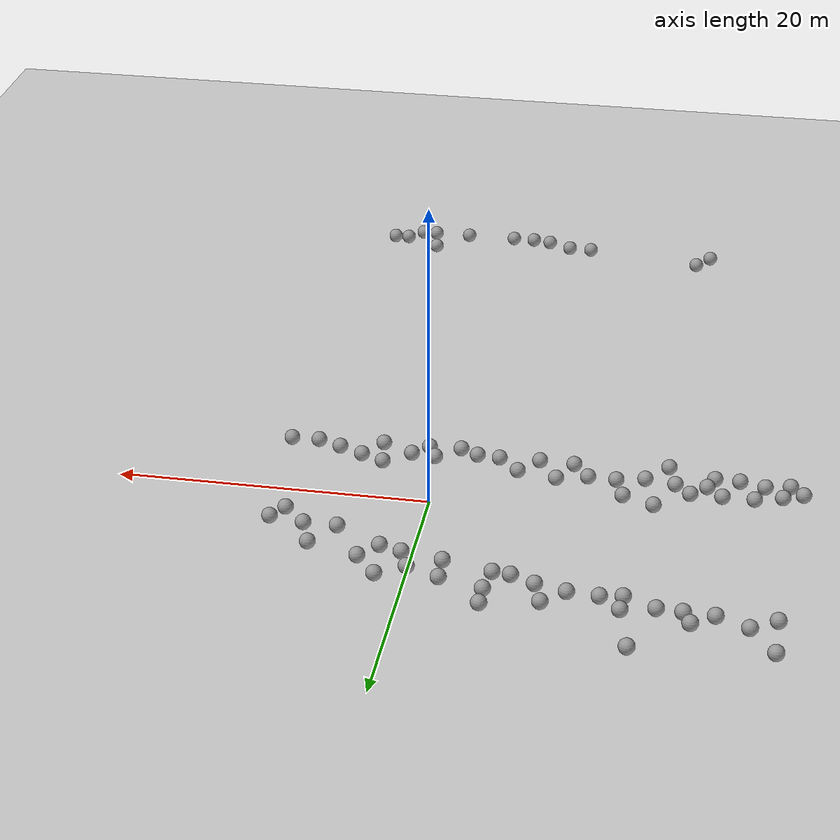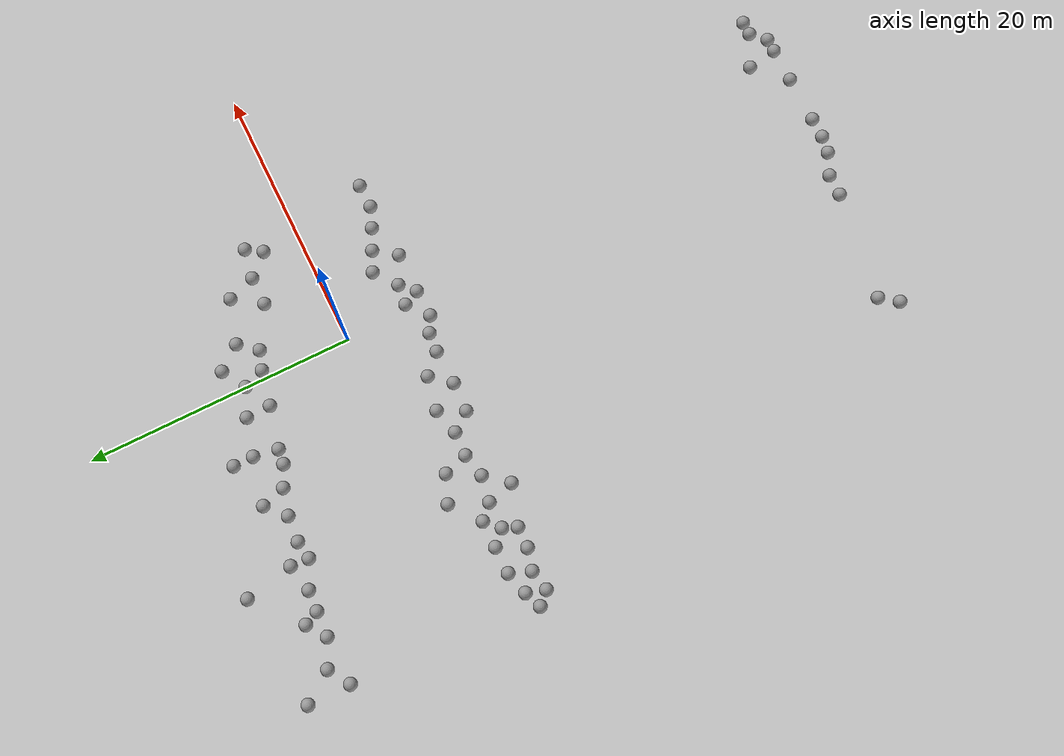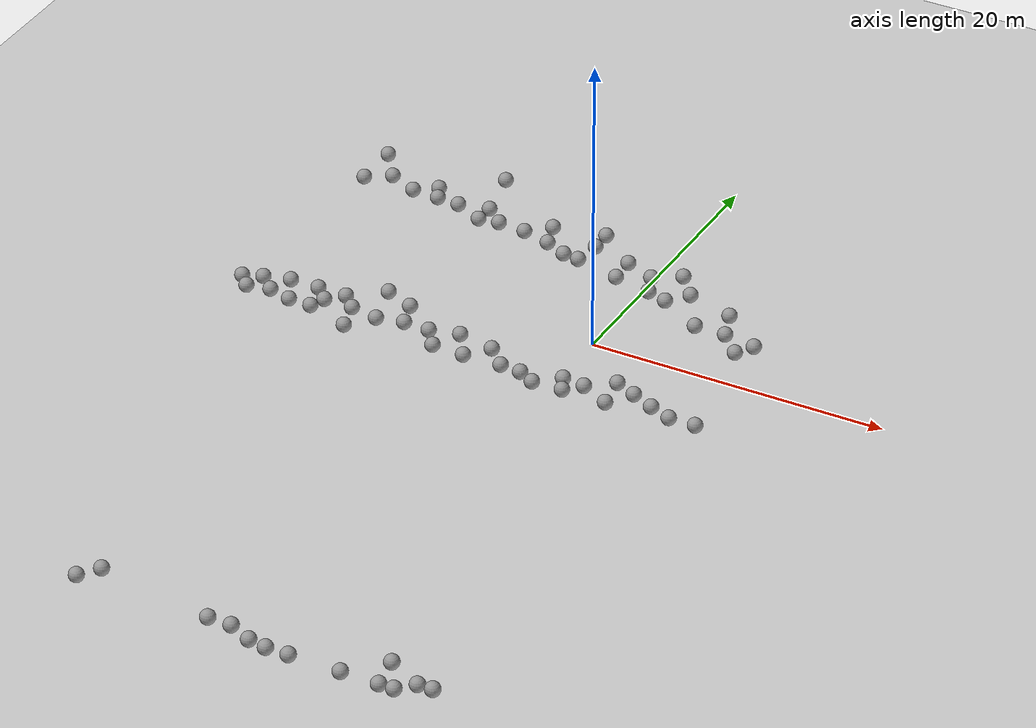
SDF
<sdf version="1.6">
 <world name="default">
  <model name="ground_plane">
   <static>1</static>
   <link name="link">
    <collision name="collision">
     <geometry><plane><normal>0 0 1</normal><size>100 100</size></plane></geometry>
     <surface><friction><ode><mu>100</mu><mu2>50</mu2></ode></friction></surface>
    </collision>
    <visual name="visual">
     <cast_shadows>0</cast_shadows>
     <geometry><plane><normal>0 0 1</normal><size>100 100</size></plane></geometry>
     <material>
      <script><uri>file://media/materials/scripts/gazebo.material</uri><name>Gazebo/Grey</name></script>
     </material>
    </visual>
   </link>
  </model>
  <model name="unit_sphere_0">
   <pose>5.15486 -4.38811 0.5 0 -0 0</pose>
   <link name="link">
    <inertial>
     <mass>1</mass>
     <inertia><ixx>0.1</ixx><ixy>0</ixy><ixz>0</ixz><iyy>0.1</iyy><iyz>0</iyz><izz>0.1</izz></inertia>
    </inertial>
    <collision name="collision"><geometry><sphere><radius>0.5</radius></sphere></geometry></collision>
    <visual name="visual">
     <geometry><sphere><radius>0.5</radius></sphere></geometry>
     <material>
      <script><name>Gazebo/Grey</name><uri>file://media/materials/scripts/gazebo.material</uri></script>
     </material>
    </visual>
   </link>
  </model>
  <model name="unit_sphere_0_clone">
   <pose>6.71384 -5.09296 0.5 0 -0 0</pose>
   <link name="link">
    <inertial>
     <mass>1</mass>
     <inertia><ixx>0.1</ixx><ixy>0</ixy><ixz>0</ixz><iyy>0.1</iyy><iyz>0</iyz><izz>0.1</izz></inertia>
    </inertial>
    <collision name="collision"><geometry><sphere><radius>0.5</radius></sphere></geometry></collision>
    <visual name="visual">
     <geometry><sphere><radius>0.5</radius></sphere></geometry>
     <material>
      <script><name>Gazebo/Grey</name><uri>file://media/materials/scripts/gazebo.material</uri></script>
     </material>
    </visual>
   </link>
  </model>
  <model name="unit_sphere_0_clone_0">
   <pose>8.23139 -5.68918 0.5 0 -0 0</pose>
   <link name="link">
    <inertial>
     <mass>1</mass>
     <inertia><ixx>0.1</ixx><ixy>0</ixy><ixz>0</ixz><iyy>0.1</iyy><iyz>0</iyz><izz>0.1</izz></inertia>
    </inertial>
    <collision name="collision"><geometry><sphere><radius>0.5</radius></sphere></geometry></collision>
    <visual name="visual">
     <geometry><sphere><radius>0.5</radius></sphere></geometry>
     <material>
      <script><name>Gazebo/Grey</name><uri>file://media/materials/scripts/gazebo.material</uri></script>
     </material>
    </visual>
   </link>
  </model>
  <model name="unit_sphere_0_clone_1">
   <pose>10.0198 -5.65385 0.5 0 -0 0</pose>
   <link name="link">
    <inertial>
     <mass>1</mass>
     <inertia><ixx>0.1</ixx><ixy>0</ixy><ixz>0</ixz><iyy>0.1</iyy><iyz>0</iyz><izz>0.1</izz></inertia>
    </inertial>
    <collision name="collision"><geometry><sphere><radius>0.5</radius></sphere></geometry></collision>
    <visual name="visual">
     <geometry><sphere><radius>0.5</radius></sphere></geometry>
     <material>
      <script><name>Gazebo/Grey</name><uri>file://media/materials/scripts/gazebo.material</uri></script>
     </material>
    </visual>
   </link>
  </model>
  <model name="unit_sphere_0_clone_7">
   <pose>7.08774 4.29856 0.5 0 -0 0</pose>
   <link name="link">
    <inertial>
     <mass>1</mass>
     <inertia><ixx>0.1</ixx><ixy>0</ixy><ixz>0</ixz><iyy>0.1</iyy><iyz>0</iyz><izz>0.1</izz></inertia>
    </inertial>
    <collision name="collision"><geometry><sphere><radius>0.5</radius></sphere></geometry></collision>
    <visual name="visual">
     <geometry><sphere><radius>0.5</radius></sphere></geometry>
     <material>
      <script><name>Gazebo/Grey</name><uri>file://media/materials/scripts/gazebo.material</uri></script>
     </material>
    </visual>
   </link>
  </model>
  <model name="unit_sphere_0_clone_8">
   <pose>8.53893 2.74635 0.5 0 -0 0</pose>
   <link name="link">
    <inertial>
     <mass>1</mass>
     <inertia><ixx>0.1</ixx><ixy>0</ixy><ixz>0</ixz><iyy>0.1</iyy><iyz>0</iyz><izz>0.1</izz></inertia>
    </inertial>
    <collision name="collision"><geometry><sphere><radius>0.5</radius></sphere></geometry></collision>
    <visual name="visual">
     <geometry><sphere><radius>0.5</radius></sphere></geometry>
     <material>
      <script><name>Gazebo/Grey</name><uri>file://media/materials/scripts/gazebo.material</uri></script>
     </material>
    </visual>
   </link>
  </model>
  <model name="unit_sphere_0_clone_9">
   <pose>9.28861 3.90002 0.5 0 -0 0</pose>
   <link name="link">
    <inertial>
     <mass>1</mass>
     <inertia><ixx>0.1</ixx><ixy>0</ixy><ixz>0</ixz><iyy>0.1</iyy><iyz>0</iyz><izz>0.1</izz></inertia>
    </inertial>
    <collision name="collision"><geometry><sphere><radius>0.5</radius></sphere></geometry></collision>
    <visual name="visual">
     <geometry><sphere><radius>0.5</radius></sphere></geometry>
     <material>
      <script><name>Gazebo/Grey</name><uri>file://media/materials/scripts/gazebo.material</uri></script>
     </material>
    </visual>
   </link>
  </model>
  <model name="unit_sphere_0_clone_46">
   <pose>-17.0385 11.0775 0.5 0 -0 0</pose>
   <link name="link">
    <inertial>
     <mass>1</mass>
     <inertia><ixx>0.1</ixx><ixy>0</ixy><ixz>0</ixz><iyy>0.1</iyy><iyz>0</iyz><izz>0.1</izz></inertia>
    </inertial>
    <collision name="collision"><geometry><sphere><radius>0.5</radius></sphere></geometry></collision>
    <visual name="visual">
     <geometry><sphere><radius>0.5</radius></sphere></geometry>
     <material>
      <script><name>Gazebo/Grey</name><uri>file://media/materials/scripts/gazebo.material</uri></script>
     </material>
    </visual>
   </link>
  </model>
  <model name="unit_sphere_0_clone_47">
   <pose>-8.29138 10.353 0.5 0 -0 0</pose>
   <link name="link">
    <inertial>
     <mass>1</mass>
     <inertia><ixx>0.1</ixx><ixy>0</ixy><ixz>0</ixz><iyy>0.1</iyy><iyz>0</iyz><izz>0.1</izz></inertia>
    </inertial>
    <collision name="collision"><geometry><sphere><radius>0.5</radius></sphere></geometry></collision>
    <visual name="visual">
     <geometry><sphere><radius>0.5</radius></sphere></geometry>
     <material>
      <script><name>Gazebo/Grey</name><uri>file://media/materials/scripts/gazebo.material</uri></script>
     </material>
    </visual>
   </link>
  </model>
  <model name="unit_sphere_0_clone_48">
   <pose>-2.06402 8.83003 0.5 0 -0 0</pose>
   <link name="link">
    <inertial>
     <mass>1</mass>
     <inertia><ixx>0.1</ixx><ixy>0</ixy><ixz>0</ixz><iyy>0.1</iyy><iyz>0</iyz><izz>0.1</izz></inertia>
    </inertial>
    <collision name="collision"><geometry><sphere><radius>0.5</radius></sphere></geometry></collision>
    <visual name="visual">
     <geometry><sphere><radius>0.5</radius></sphere></geometry>
     <material>
      <script><name>Gazebo/Grey</name><uri>file://media/materials/scripts/gazebo.material</uri></script>
     </material>
    </visual>
   </link>
  </model>
  <model name="unit_sphere_0_clone_49">
   <pose>3.12178 7.33825 0.5 0 -0 0</pose>
   <link name="link">
    <inertial>
     <mass>1</mass>
     <inertia><ixx>0.1</ixx><ixy>0</ixy><ixz>0</ixz><iyy>0.1</iyy><iyz>0</iyz><izz>0.1</izz></inertia>
    </inertial>
    <collision name="collision"><geometry><sphere><radius>0.5</radius></sphere></geometry></collision>
    <visual name="visual">
     <geometry><sphere><radius>0.5</radius></sphere></geometry>
     <material>
      <script><name>Gazebo/Grey</name><uri>file://media/materials/scripts/gazebo.material</uri></script>
     </material>
    </visual>
   </link>
  </model>
  <model name="unit_sphere_0_clone_66">
   <pose>-17.4237 -5.03519 0.5 0 -0 0</pose>
   <link name="link">
    <inertial>
     <mass>1</mass>
     <inertia><ixx>0.1</ixx><ixy>0</ixy><ixz>0</ixz><iyy>0.1</iyy><iyz>0</iyz><izz>0.1</izz></inertia>
    </inertial>
    <collision name="collision"><geometry><sphere><radius>0.5</radius></sphere></geometry></collision>
    <visual name="visual">
     <geometry><sphere><radius>0.5</radius></sphere></geometry>
     <material>
      <script><name>Gazebo/Grey</name><uri>file://media/materials/scripts/gazebo.material</uri></script>
     </material>
    </visual>
   </link>
  </model>
  <model name="unit_sphere_0_clone_67">
   <pose>-8.45682 -5.37674 0.5 0 -0 0</pose>
   <link name="link">
    <inertial>
     <mass>1</mass>
     <inertia><ixx>0.1</ixx><ixy>0</ixy><ixz>0</ixz><iyy>0.1</iyy><iyz>0</iyz><izz>0.1</izz></inertia>
    </inertial>
    <collision name="collision"><geometry><sphere><radius>0.5</radius></sphere></geometry></collision>
    <visual name="visual">
     <geometry><sphere><radius>0.5</radius></sphere></geometry>
     <material>
      <script><name>Gazebo/Grey</name><uri>file://media/materials/scripts/gazebo.material</uri></script>
     </material>
    </visual>
   </link>
  </model>
  <model name="unit_sphere_0_clone_68">
   <pose>-3.64738 -5.35577 0.5 0 -0 0</pose>
   <link name="link">
    <inertial>
     <mass>1</mass>
     <inertia><ixx>0.1</ixx><ixy>0</ixy><ixz>0</ixz><iyy>0.1</iyy><iyz>0</iyz><izz>0.1</izz></inertia>
    </inertial>
    <collision name="collision"><geometry><sphere><radius>0.5</radius></sphere></geometry></collision>
    <visual name="visual">
     <geometry><sphere><radius>0.5</radius></sphere></geometry>
     <material>
      <script><name>Gazebo/Grey</name><uri>file://media/materials/scripts/gazebo.material</uri></script>
     </material>
    </visual>
   </link>
  </model>
  <model name="unit_sphere_0_clone_69">
   <pose>0.457119 -4.82896 0.5 0 -0 0</pose>
   <link name="link">
    <inertial>
     <mass>1</mass>
     <inertia><ixx>0.1</ixx><ixy>0</ixy><ixz>0</ixz><iyy>0.1</iyy><iyz>0</iyz><izz>0.1</izz></inertia>
    </inertial>
    <collision name="collision"><geometry><sphere><radius>0.5</radius></sphere></geometry></collision>
    <visual name="visual">
     <geometry><sphere><radius>0.5</radius></sphere></geometry>
     <material>
      <script><name>Gazebo/Grey</name><uri>file://media/materials/scripts/gazebo.material</uri></script>
     </material>
    </visual>
   </link>
  </model>
  <model name="unit_sphere_0_clone_74">
   <pose>-4.39592 -37.0393 0.5 0 -0 0</pose>
   <link name="link">
    <inertial>
     <mass>1</mass>
     <inertia><ixx>0.1</ixx><ixy>0</ixy><ixz>0</ixz><iyy>0.1</iyy><iyz>0</iyz><izz>0.1</izz></inertia>
    </inertial>
    <collision name="collision"><geometry><sphere><radius>0.5</radius></sphere></geometry></collision>
    <visual name="visual">
     <geometry><sphere><radius>0.5</radius></sphere></geometry>
     <material>
      <script><name>Gazebo/Grey</name><uri>file://media/materials/scripts/gazebo.material</uri></script>
     </material>
    </visual>
   </link>
  </model>
  <model name="unit_sphere_0_clone_75">
   <pose>5.6303 -35.7873 0.5 0 -0 0</pose>
   <link name="link">
    <inertial>
     <mass>1</mass>
     <inertia><ixx>0.1</ixx><ixy>0</ixy><ixz>0</ixz><iyy>0.1</iyy><iyz>0</iyz><izz>0.1</izz></inertia>
    </inertial>
    <collision name="collision"><geometry><sphere><radius>0.5</radius></sphere></geometry></collision>
    <visual name="visual">
     <geometry><sphere><radius>0.5</radius></sphere></geometry>
     <material>
      <script><name>Gazebo/Grey</name><uri>file://media/materials/scripts/gazebo.material</uri></script>
     </material>
    </visual>
   </link>
  </model>
  <model name="unit_sphere_0_clone_76">
   <pose>-14.0409 -35.7155 0.5 0 -0 0</pose>
   <link name="link">
    <inertial>
     <mass>1</mass>
     <inertia><ixx>0.1</ixx><ixy>0</ixy><ixz>0</ixz><iyy>0.1</iyy><iyz>0</iyz><izz>0.1</izz></inertia>
    </inertial>
    <collision name="collision"><geometry><sphere><radius>0.5</radius></sphere></geometry></collision>
    <visual name="visual">
     <geometry><sphere><radius>0.5</radius></sphere></geometry>
     <material>
      <script><name>Gazebo/Grey</name><uri>file://media/materials/scripts/gazebo.material</uri></script>
     </material>
    </visual>
   </link>
  </model>
  <model name="unit_sphere_0_clone_92">
   <pose>-21.74 -3.48856 0.5 0 -0 0</pose>
   <link name="link">
    <inertial>
     <mass>1</mass>
     <inertia><ixx>0.1</ixx><ixy>0</ixy><ixz>0</ixz><iyy>0.1</iyy><iyz>0</iyz><izz>0.1</izz></inertia>
    </inertial>
    <collision name="collision"><geometry><sphere><radius>0.5</radius></sphere></geometry></collision>
    <visual name="visual">
     <geometry><sphere><radius>0.5</radius></sphere></geometry>
     <material>
      <script><name>Gazebo/Grey</name><uri>file://media/materials/scripts/gazebo.material</uri></script>
     </material>
    </visual>
   </link>
  </model>
  <model name="unit_sphere_0_clone_93">
   <pose>-11.8546 -2.13799 0.5 0 -0 0</pose>
   <link name="link">
    <inertial>
     <mass>1</mass>
     <inertia><ixx>0.1</ixx><ixy>0</ixy><ixz>0</ixz><iyy>0.1</iyy><iyz>0</iyz><izz>0.1</izz></inertia>
    </inertial>
    <collision name="collision"><geometry><sphere><radius>0.5</radius></sphere></geometry></collision>
    <visual name="visual">
     <geometry><sphere><radius>0.5</radius></sphere></geometry>
     <material>
      <script><name>Gazebo/Grey</name><uri>file://media/materials/scripts/gazebo.material</uri></script>
     </material>
    </visual>
   </link>
  </model>
  <model name="unit_sphere_0_clone_94">
   <pose>-16 -3 0.5 0 -0 0</pose>
   <link name="link">
    <inertial>
     <mass>1</mass>
     <inertia><ixx>0.1</ixx><ixy>0</ixy><ixz>0</ixz><iyy>0.1</iyy><iyz>0</iyz><izz>0.1</izz></inertia>
    </inertial>
    <collision name="collision"><geometry><sphere><radius>0.5</radius></sphere></geometry></collision>
    <visual name="visual">
     <geometry><sphere><radius>0.5</radius></sphere></geometry>
     <material>
      <script><name>Gazebo/Grey</name><uri>file://media/materials/scripts/gazebo.material</uri></script>
     </material>
    </visual>
   </link>
  </model>
  <model name="unit_sphere_0_clone_108">
   <pose>-21.996 13.1864 0.5 0 -0 0</pose>
   <link name="link">
    <inertial>
     <mass>1</mass>
     <inertia><ixx>0.1</ixx><ixy>0</ixy><ixz>0</ixz><iyy>0.1</iyy><iyz>0</iyz><izz>0.1</izz></inertia>
    </inertial>
    <collision name="collision"><geometry><sphere><radius>0.5</radius></sphere></geometry></collision>
    <visual name="visual">
     <geometry><sphere><radius>0.5</radius></sphere></geometry>
     <material>
      <script><name>Gazebo/Grey</name><uri>file://media/materials/scripts/gazebo.material</uri></script>
     </material>
    </visual>
   </link>
  </model>
  <model name="unit_sphere_0_clone_109">
   <pose>-13.6837 13.9819 0.5 0 -0 0</pose>
   <link name="link">
    <inertial>
     <mass>1</mass>
     <inertia><ixx>0.1</ixx><ixy>0</ixy><ixz>0</ixz><iyy>0.1</iyy><iyz>0</iyz><izz>0.1</izz></inertia>
    </inertial>
    <collision name="collision"><geometry><sphere><radius>0.5</radius></sphere></geometry></collision>
    <visual name="visual">
     <geometry><sphere><radius>0.5</radius></sphere></geometry>
     <material>
      <script><name>Gazebo/Grey</name><uri>file://media/materials/scripts/gazebo.material</uri></script>
     </material>
    </visual>
   </link>
  </model>
  <model name="unit_sphere_0_clone_110">
   <pose>-11.6248 9.21536 0.5 0 -0 0</pose>
   <link name="link">
    <inertial>
     <mass>1</mass>
     <inertia><ixx>0.1</ixx><ixy>0</ixy><ixz>0</ixz><iyy>0.1</iyy><iyz>0</iyz><izz>0.1</izz></inertia>
    </inertial>
    <collision name="collision"><geometry><sphere><radius>0.5</radius></sphere></geometry></collision>
    <visual name="visual">
     <geometry><sphere><radius>0.5</radius></sphere></geometry>
     <material>
      <script><name>Gazebo/Grey</name><uri>file://media/materials/scripts/gazebo.material</uri></script>
     </material>
    </visual>
   </link>
  </model>
  <model name="unit_sphere_0_clone_111">
   <pose>-12.934 10.3721 0.5 0 -0 0</pose>
   <link name="link">
    <inertial>
     <mass>1</mass>
     <inertia><ixx>0.1</ixx><ixy>0</ixy><ixz>0</ixz><iyy>0.1</iyy><iyz>0</iyz><izz>0.1</izz></inertia>
    </inertial>
    <collision name="collision"><geometry><sphere><radius>0.5</radius></sphere></geometry></collision>
    <visual name="visual">
     <geometry><sphere><radius>0.5</radius></sphere></geometry>
     <material>
      <script><name>Gazebo/Grey</name><uri>file://media/materials/scripts/gazebo.material</uri></script>
     </material>
    </visual>
   </link>
  </model>
  <model name="unit_sphere_0_clone_112">
   <pose>-4.81926 11.0803 0.5 0 -0 0</pose>
   <link name="link">
    <inertial>
     <mass>1</mass>
     <inertia><ixx>0.1</ixx><ixy>0</ixy><ixz>0</ixz><iyy>0.1</iyy><iyz>0</iyz><izz>0.1</izz></inertia>
    </inertial>
    <collision name="collision"><geometry><sphere><radius>0.5</radius></sphere></geometry></collision>
    <visual name="visual">
     <geometry><sphere><radius>0.5</radius></sphere></geometry>
     <material>
      <script><name>Gazebo/Grey</name><uri>file://media/materials/scripts/gazebo.material</uri></script>
     </material>
    </visual>
   </link>
  </model>
  <model name="unit_sphere_0_clone_113">
   <pose>-5.10187 7.7334 0.5 0.014407 0.122545 0.000898</pose>
   <link name="link">
    <inertial>
     <mass>1</mass>
     <inertia><ixx>0.1</ixx><ixy>0</ixy><ixz>0</ixz><iyy>0.1</iyy><iyz>0</iyz><izz>0.1</izz></inertia>
    </inertial>
    <collision name="collision"><geometry><sphere><radius>0.5</radius></sphere></geometry></collision>
    <visual name="visual">
     <geometry><sphere><radius>0.5</radius></sphere></geometry>
     <material>
      <script><name>Gazebo/Grey</name><uri>file://media/materials/scripts/gazebo.material</uri></script>
     </material>
    </visual>
   </link>
  </model>
  <model name="unit_sphere_0_clone_114">
   <pose>1.75236 9.06116 0.5 0 -0 0</pose>
   <link name="link">
    <inertial>
     <mass>1</mass>
     <inertia><ixx>0.1</ixx><ixy>0</ixy><ixz>0</ixz><iyy>0.1</iyy><iyz>0</iyz><izz>0.1</izz></inertia>
    </inertial>
    <collision name="collision"><geometry><sphere><radius>0.5</radius></sphere></geometry></collision>
    <visual name="visual">
     <geometry><sphere><radius>0.5</radius></sphere></geometry>
     <material>
      <script><name>Gazebo/Grey</name><uri>file://media/materials/scripts/gazebo.material</uri></script>
     </material>
    </visual>
   </link>
  </model>
  <model name="unit_sphere_1_clone_17">
   <pose>9 -37 0.5 0 -0 0</pose>
   <link name="link">
    <inertial>
     <mass>1</mass>
     <inertia><ixx>0.1</ixx><ixy>0</ixy><ixz>0</ixz><iyy>0.1</iyy><iyz>0</iyz><izz>0.1</izz></inertia>
    </inertial>
    <collision name="collision"><geometry><sphere><radius>0.5</radius></sphere></geometry></collision>
    <visual name="visual">
     <geometry><sphere><radius>0.5</radius></sphere></geometry>
     <material>
      <script><name>Gazebo/Grey</name><uri>file://media/materials/scripts/gazebo.material</uri></script>
     </material>
    </visual>
   </link>
  </model>
  <model name="unit_sphere_1_clone_18">
   <pose>8 -37 0.5 0 -0 0</pose>
   <link name="link">
    <inertial>
     <mass>1</mass>
     <inertia><ixx>0.1</ixx><ixy>0</ixy><ixz>0</ixz><iyy>0.1</iyy><iyz>0</iyz><izz>0.1</izz></inertia>
    </inertial>
    <collision name="collision"><geometry><sphere><radius>0.5</radius></sphere></geometry></collision>
    <visual name="visual">
     <geometry><sphere><radius>0.5</radius></sphere></geometry>
     <material>
      <script><name>Gazebo/Grey</name><uri>file://media/materials/scripts/gazebo.material</uri></script>
     </material>
    </visual>
   </link>
  </model>
  <model name="unit_sphere_1_clone_20">
   <pose>7 -38 0.5 0 -0 0</pose>
   <link name="link">
    <inertial>
     <mass>1</mass>
     <inertia><ixx>0.1</ixx><ixy>0</ixy><ixz>0</ixz><iyy>0.1</iyy><iyz>0</iyz><izz>0.1</izz></inertia>
    </inertial>
    <collision name="collision"><geometry><sphere><radius>0.5</radius></sphere></geometry></collision>
    <visual name="visual">
     <geometry><sphere><radius>0.5</radius></sphere></geometry>
     <material>
      <script><name>Gazebo/Grey</name><uri>file://media/materials/scripts/gazebo.material</uri></script>
     </material>
    </visual>
   </link>
  </model>
  <model name="unit_sphere_1_clone_21">
   <pose>6 -38 0.5 0 -0 0</pose>
   <link name="link">
    <inertial>
     <mass>1</mass>
     <inertia><ixx>0.1</ixx><ixy>0</ixy><ixz>0</ixz><iyy>0.1</iyy><iyz>0</iyz><izz>0.1</izz></inertia>
    </inertial>
    <collision name="collision"><geometry><sphere><radius>0.5</radius></sphere></geometry></collision>
    <visual name="visual">
     <geometry><sphere><radius>0.5</radius></sphere></geometry>
     <material>
      <script><name>Gazebo/Grey</name><uri>file://media/materials/scripts/gazebo.material</uri></script>
     </material>
    </visual>
   </link>
  </model>
  <model name="unit_sphere_1_clone_25">
   <pose>3.46403 -38 0.5 0 -0 0</pose>
   <link name="link">
    <inertial>
     <mass>1</mass>
     <inertia><ixx>0.1</ixx><ixy>0</ixy><ixz>0</ixz><iyy>0.1</iyy><iyz>0</iyz><izz>0.1</izz></inertia>
    </inertial>
    <collision name="collision"><geometry><sphere><radius>0.5</radius></sphere></geometry></collision>
    <visual name="visual">
     <geometry><sphere><radius>0.5</radius></sphere></geometry>
     <material>
      <script><name>Gazebo/Grey</name><uri>file://media/materials/scripts/gazebo.material</uri></script>
     </material>
    </visual>
   </link>
  </model>
  <model name="unit_sphere_1_clone_26">
   <pose>0 -38 0.5 0 -0 0</pose>
   <link name="link">
    <inertial>
     <mass>1</mass>
     <inertia><ixx>0.1</ixx><ixy>0</ixy><ixz>0</ixz><iyy>0.1</iyy><iyz>0</iyz><izz>0.1</izz></inertia>
    </inertial>
    <collision name="collision"><geometry><sphere><radius>0.5</radius></sphere></geometry></collision>
    <visual name="visual">
     <geometry><sphere><radius>0.5</radius></sphere></geometry>
     <material>
      <script><name>Gazebo/Grey</name><uri>file://media/materials/scripts/gazebo.material</uri></script>
     </material>
    </visual>
   </link>
  </model>
  <model name="unit_sphere_1_clone_27">
   <pose>-2.78454 -37.7752 0.5 0 -0 0</pose>
   <link name="link">
    <inertial>
     <mass>1</mass>
     <inertia><ixx>0.1</ixx><ixy>0</ixy><ixz>0</ixz><iyy>0.1</iyy><iyz>0</iyz><izz>0.1</izz></inertia>
    </inertial>
    <collision name="collision"><geometry><sphere><radius>0.5</radius></sphere></geometry></collision>
    <visual name="visual">
     <geometry><sphere><radius>0.5</radius></sphere></geometry>
     <material>
      <script><name>Gazebo/Grey</name><uri>file://media/materials/scripts/gazebo.material</uri></script>
     </material>
    </visual>
   </link>
  </model>
  <model name="unit_sphere_1_clone_28">
   <pose>-1.52495 -38 0.5 0 -0 0</pose>
   <link name="link">
    <inertial>
     <mass>1</mass>
     <inertia><ixx>0.1</ixx><ixy>0</ixy><ixz>0</ixz><iyy>0.1</iyy><iyz>0</iyz><izz>0.1</izz></inertia>
    </inertial>
    <collision name="collision"><geometry><sphere><radius>0.5</radius></sphere></geometry></collision>
    <visual name="visual">
     <geometry><sphere><radius>0.5</radius></sphere></geometry>
     <material>
      <script><name>Gazebo/Grey</name><uri>file://media/materials/scripts/gazebo.material</uri></script>
     </material>
    </visual>
   </link>
  </model>
  <model name="unit_sphere_1_clone_29">
   <pose>-6 -37 0.5 0 -0 0</pose>
   <link name="link">
    <inertial>
     <mass>1</mass>
     <inertia><ixx>0.1</ixx><ixy>0</ixy><ixz>0</ixz><iyy>0.1</iyy><iyz>0</iyz><izz>0.1</izz></inertia>
    </inertial>
    <collision name="collision"><geometry><sphere><radius>0.5</radius></sphere></geometry></collision>
    <visual name="visual">
     <geometry><sphere><radius>0.5</radius></sphere></geometry>
     <material>
      <script><name>Gazebo/Grey</name><uri>file://media/materials/scripts/gazebo.material</uri></script>
     </material>
    </visual>
   </link>
  </model>
  <model name="unit_sphere_1_clone_36">
   <pose>-15 -37 0.5 0 -0 0</pose>
   <link name="link">
    <inertial>
     <mass>1</mass>
     <inertia><ixx>0.1</ixx><ixy>0</ixy><ixz>0</ixz><iyy>0.1</iyy><iyz>0</iyz><izz>0.1</izz></inertia>
    </inertial>
    <collision name="collision"><geometry><sphere><radius>0.5</radius></sphere></geometry></collision>
    <visual name="visual">
     <geometry><sphere><radius>0.5</radius></sphere></geometry>
     <material>
      <script><name>Gazebo/Grey</name><uri>file://media/materials/scripts/gazebo.material</uri></script>
     </material>
    </visual>
   </link>
  </model>
  <model name="unit_sphere_1_clone_108">
   <pose>-22.1653 -4.89296 0.5 0 -0 0</pose>
   <link name="link">
    <inertial>
     <mass>1</mass>
     <inertia><ixx>0.1</ixx><ixy>0</ixy><ixz>0</ixz><iyy>0.1</iyy><iyz>0</iyz><izz>0.1</izz></inertia>
    </inertial>
    <collision name="collision"><geometry><sphere><radius>0.5</radius></sphere></geometry></collision>
    <visual name="visual">
     <geometry><sphere><radius>0.5</radius></sphere></geometry>
     <material>
      <script><name>Gazebo/Grey</name><uri>file://media/materials/scripts/gazebo.material</uri></script>
     </material>
    </visual>
   </link>
  </model>
  <model name="unit_sphere_1_clone_109">
   <pose>-23 -4 0.5 0 -0 0</pose>
   <link name="link">
    <inertial>
     <mass>1</mass>
     <inertia><ixx>0.1</ixx><ixy>0</ixy><ixz>0</ixz><iyy>0.1</iyy><iyz>0</iyz><izz>0.1</izz></inertia>
    </inertial>
    <collision name="collision"><geometry><sphere><radius>0.5</radius></sphere></geometry></collision>
    <visual name="visual">
     <geometry><sphere><radius>0.5</radius></sphere></geometry>
     <material>
      <script><name>Gazebo/Grey</name><uri>file://media/materials/scripts/gazebo.material</uri></script>
     </material>
    </visual>
   </link>
  </model>
  <model name="unit_sphere_1_clone_110">
   <pose>-20.5952 -4.57551 0.5 0 -0 0</pose>
   <link name="link">
    <inertial>
     <mass>1</mass>
     <inertia><ixx>0.1</ixx><ixy>0</ixy><ixz>0</ixz><iyy>0.1</iyy><iyz>0</iyz><izz>0.1</izz></inertia>
    </inertial>
    <collision name="collision"><geometry><sphere><radius>0.5</radius></sphere></geometry></collision>
    <visual name="visual">
     <geometry><sphere><radius>0.5</radius></sphere></geometry>
     <material>
      <script><name>Gazebo/Grey</name><uri>file://media/materials/scripts/gazebo.material</uri></script>
     </material>
    </visual>
   </link>
  </model>
  <model name="unit_sphere_1_clone_111">
   <pose>-20 -3 0.5 0 -0 0</pose>
   <link name="link">
    <inertial>
     <mass>1</mass>
     <inertia><ixx>0.1</ixx><ixy>0</ixy><ixz>0</ixz><iyy>0.1</iyy><iyz>0</iyz><izz>0.1</izz></inertia>
    </inertial>
    <collision name="collision"><geometry><sphere><radius>0.5</radius></sphere></geometry></collision>
    <visual name="visual">
     <geometry><sphere><radius>0.5</radius></sphere></geometry>
     <material>
      <script><name>Gazebo/Grey</name><uri>file://media/materials/scripts/gazebo.material</uri></script>
     </material>
    </visual>
   </link>
  </model>
  <model name="unit_sphere_1_clone_112">
   <pose>-19 -5 0.5 0 -0 0</pose>
   <link name="link">
    <inertial>
     <mass>1</mass>
     <inertia><ixx>0.1</ixx><ixy>0</ixy><ixz>0</ixz><iyy>0.1</iyy><iyz>0</iyz><izz>0.1</izz></inertia>
    </inertial>
    <collision name="collision"><geometry><sphere><radius>0.5</radius></sphere></geometry></collision>
    <visual name="visual">
     <geometry><sphere><radius>0.5</radius></sphere></geometry>
     <material>
      <script><name>Gazebo/Grey</name><uri>file://media/materials/scripts/gazebo.material</uri></script>
     </material>
    </visual>
   </link>
  </model>
  <model name="unit_sphere_1_clone_113">
   <pose>-18 -3 0.5 0 -0 0</pose>
   <link name="link">
    <inertial>
     <mass>1</mass>
     <inertia><ixx>0.1</ixx><ixy>0</ixy><ixz>0</ixz><iyy>0.1</iyy><iyz>0</iyz><izz>0.1</izz></inertia>
    </inertial>
    <collision name="collision"><geometry><sphere><radius>0.5</radius></sphere></geometry></collision>
    <visual name="visual">
     <geometry><sphere><radius>0.5</radius></sphere></geometry>
     <material>
      <script><name>Gazebo/Grey</name><uri>file://media/materials/scripts/gazebo.material</uri></script>
     </material>
    </visual>
   </link>
  </model>
  <model name="unit_sphere_1_clone_114">
   <pose>-17 -4 0.5 0 -0 0</pose>
   <link name="link">
    <inertial>
     <mass>1</mass>
     <inertia><ixx>0.1</ixx><ixy>0</ixy><ixz>0</ixz><iyy>0.1</iyy><iyz>0</iyz><izz>0.1</izz></inertia>
    </inertial>
    <collision name="collision"><geometry><sphere><radius>0.5</radius></sphere></geometry></collision>
    <visual name="visual">
     <geometry><sphere><radius>0.5</radius></sphere></geometry>
     <material>
      <script><name>Gazebo/Grey</name><uri>file://media/materials/scripts/gazebo.material</uri></script>
     </material>
    </visual>
   </link>
  </model>
  <model name="unit_sphere_1_clone_115">
   <pose>-15 -4 0.5 0 -0 0</pose>
   <link name="link">
    <inertial>
     <mass>1</mass>
     <inertia><ixx>0.1</ixx><ixy>0</ixy><ixz>0</ixz><iyy>0.1</iyy><iyz>0</iyz><izz>0.1</izz></inertia>
    </inertial>
    <collision name="collision"><geometry><sphere><radius>0.5</radius></sphere></geometry></collision>
    <visual name="visual">
     <geometry><sphere><radius>0.5</radius></sphere></geometry>
     <material>
      <script><name>Gazebo/Grey</name><uri>file://media/materials/scripts/gazebo.material</uri></script>
     </material>
    </visual>
   </link>
  </model>
  <model name="unit_sphere_1_clone_116">
   <pose>-13.0794 -4.33675 0.5 0 -0 0</pose>
   <link name="link">
    <inertial>
     <mass>1</mass>
     <inertia><ixx>0.1</ixx><ixy>0</ixy><ixz>0</ixz><iyy>0.1</iyy><iyz>0</iyz><izz>0.1</izz></inertia>
    </inertial>
    <collision name="collision"><geometry><sphere><radius>0.5</radius></sphere></geometry></collision>
    <visual name="visual">
     <geometry><sphere><radius>0.5</radius></sphere></geometry>
     <material>
      <script><name>Gazebo/Grey</name><uri>file://media/materials/scripts/gazebo.material</uri></script>
     </material>
    </visual>
   </link>
  </model>
  <model name="unit_sphere_1_clone_117">
   <pose>-11.2812 -3.93493 0.5 0 -0 0</pose>
   <link name="link">
    <inertial>
     <mass>1</mass>
     <inertia><ixx>0.1</ixx><ixy>0</ixy><ixz>0</ixz><iyy>0.1</iyy><iyz>0</iyz><izz>0.1</izz></inertia>
    </inertial>
    <collision name="collision"><geometry><sphere><radius>0.5</radius></sphere></geometry></collision>
    <visual name="visual">
     <geometry><sphere><radius>0.5</radius></sphere></geometry>
     <material>
      <script><name>Gazebo/Grey</name><uri>file://media/materials/scripts/gazebo.material</uri></script>
     </material>
    </visual>
   </link>
  </model>
  <model name="unit_sphere_1_clone_118">
   <pose>-13.8535 -1.32096 0.5 0 -0 0</pose>
   <link name="link">
    <inertial>
     <mass>1</mass>
     <inertia><ixx>0.1</ixx><ixy>0</ixy><ixz>0</ixz><iyy>0.1</iyy><iyz>0</iyz><izz>0.1</izz></inertia>
    </inertial>
    <collision name="collision"><geometry><sphere><radius>0.5</radius></sphere></geometry></collision>
    <visual name="visual">
     <geometry><sphere><radius>0.5</radius></sphere></geometry>
     <material>
      <script><name>Gazebo/Grey</name><uri>file://media/materials/scripts/gazebo.material</uri></script>
     </material>
    </visual>
   </link>
  </model>
  <model name="unit_sphere_1_clone_119">
   <pose>-14.4611 -6 0.5 0 -0 0</pose>
   <link name="link">
    <inertial>
     <mass>1</mass>
     <inertia><ixx>0.1</ixx><ixy>0</ixy><ixz>0</ixz><iyy>0.1</iyy><iyz>0</iyz><izz>0.1</izz></inertia>
    </inertial>
    <collision name="collision"><geometry><sphere><radius>0.5</radius></sphere></geometry></collision>
    <visual name="visual">
     <geometry><sphere><radius>0.5</radius></sphere></geometry>
     <material>
      <script><name>Gazebo/Grey</name><uri>file://media/materials/scripts/gazebo.material</uri></script>
     </material>
    </visual>
   </link>
  </model>
  <model name="unit_sphere_1_clone_120">
   <pose>-9.48684 -4 0.5 0 -0 0</pose>
   <link name="link">
    <inertial>
     <mass>1</mass>
     <inertia><ixx>0.1</ixx><ixy>0</ixy><ixz>0</ixz><iyy>0.1</iyy><iyz>0</iyz><izz>0.1</izz></inertia>
    </inertial>
    <collision name="collision"><geometry><sphere><radius>0.5</radius></sphere></geometry></collision>
    <visual name="visual">
     <geometry><sphere><radius>0.5</radius></sphere></geometry>
     <material>
      <script><name>Gazebo/Grey</name><uri>file://media/materials/scripts/gazebo.material</uri></script>
     </material>
    </visual>
   </link>
  </model>
  <model name="unit_sphere_1_clone_121">
   <pose>-7.5129 -3.49486 0.5 0 -0 0</pose>
   <link name="link">
    <inertial>
     <mass>1</mass>
     <inertia><ixx>0.1</ixx><ixy>0</ixy><ixz>0</ixz><iyy>0.1</iyy><iyz>0</iyz><izz>0.1</izz></inertia>
    </inertial>
    <collision name="collision"><geometry><sphere><radius>0.5</radius></sphere></geometry></collision>
    <visual name="visual">
     <geometry><sphere><radius>0.5</radius></sphere></geometry>
     <material>
      <script><name>Gazebo/Grey</name><uri>file://media/materials/scripts/gazebo.material</uri></script>
     </material>
    </visual>
   </link>
  </model>
  <model name="unit_sphere_1_clone_122">
   <pose>-5 -4 0.5 0 -0 0</pose>
   <link name="link">
    <inertial>
     <mass>1</mass>
     <inertia><ixx>0.1</ixx><ixy>0</ixy><ixz>0</ixz><iyy>0.1</iyy><iyz>0</iyz><izz>0.1</izz></inertia>
    </inertial>
    <collision name="collision"><geometry><sphere><radius>0.5</radius></sphere></geometry></collision>
    <visual name="visual">
     <geometry><sphere><radius>0.5</radius></sphere></geometry>
     <material>
      <script><name>Gazebo/Grey</name><uri>file://media/materials/scripts/gazebo.material</uri></script>
     </material>
    </visual>
   </link>
  </model>
  <model name="unit_sphere_1_clone_123">
   <pose>3.67311 -3.72889 0.5 0 -0 0</pose>
   <link name="link">
    <inertial>
     <mass>1</mass>
     <inertia><ixx>0.1</ixx><ixy>0</ixy><ixz>0</ixz><iyy>0.1</iyy><iyz>0</iyz><izz>0.1</izz></inertia>
    </inertial>
    <collision name="collision"><geometry><sphere><radius>0.5</radius></sphere></geometry></collision>
    <visual name="visual">
     <geometry><sphere><radius>0.5</radius></sphere></geometry>
     <material>
      <script><name>Gazebo/Grey</name><uri>file://media/materials/scripts/gazebo.material</uri></script>
     </material>
    </visual>
   </link>
  </model>
  <model name="unit_sphere_1_clone_124">
   <pose>4 -6 0.5 0 -0 0</pose>
   <link name="link">
    <inertial>
     <mass>1</mass>
     <inertia><ixx>0.1</ixx><ixy>0</ixy><ixz>0</ixz><iyy>0.1</iyy><iyz>0</iyz><izz>0.1</izz></inertia>
    </inertial>
    <collision name="collision"><geometry><sphere><radius>0.5</radius></sphere></geometry></collision>
    <visual name="visual">
     <geometry><sphere><radius>0.5</radius></sphere></geometry>
     <material>
      <script><name>Gazebo/Grey</name><uri>file://media/materials/scripts/gazebo.material</uri></script>
     </material>
    </visual>
   </link>
  </model>
  <model name="unit_sphere_1_clone_125">
   <pose>2 -5 0.5 0 -0 0</pose>
   <link name="link">
    <inertial>
     <mass>1</mass>
     <inertia><ixx>0.1</ixx><ixy>0</ixy><ixz>0</ixz><iyy>0.1</iyy><iyz>0</iyz><izz>0.1</izz></inertia>
    </inertial>
    <collision name="collision"><geometry><sphere><radius>0.5</radius></sphere></geometry></collision>
    <visual name="visual">
     <geometry><sphere><radius>0.5</radius></sphere></geometry>
     <material>
      <script><name>Gazebo/Grey</name><uri>file://media/materials/scripts/gazebo.material</uri></script>
     </material>
    </visual>
   </link>
  </model>
  <model name="unit_sphere_1_clone_126">
   <pose>1 -6 0.5 0 -0 0</pose>
   <link name="link">
    <inertial>
     <mass>1</mass>
     <inertia><ixx>0.1</ixx><ixy>0</ixy><ixz>0</ixz><iyy>0.1</iyy><iyz>0</iyz><izz>0.1</izz></inertia>
    </inertial>
    <collision name="collision"><geometry><sphere><radius>0.5</radius></sphere></geometry></collision>
    <visual name="visual">
     <geometry><sphere><radius>0.5</radius></sphere></geometry>
     <material>
      <script><name>Gazebo/Grey</name><uri>file://media/materials/scripts/gazebo.material</uri></script>
     </material>
    </visual>
   </link>
  </model>
  <model name="unit_sphere_1_clone_127">
   <pose>-2.20363 -5.47718 0.5 0 -0 0</pose>
   <link name="link">
    <inertial>
     <mass>1</mass>
     <inertia><ixx>0.1</ixx><ixy>0</ixy><ixz>0</ixz><iyy>0.1</iyy><iyz>0</iyz><izz>0.1</izz></inertia>
    </inertial>
    <collision name="collision"><geometry><sphere><radius>0.5</radius></sphere></geometry></collision>
    <visual name="visual">
     <geometry><sphere><radius>0.5</radius></sphere></geometry>
     <material>
      <script><name>Gazebo/Grey</name><uri>file://media/materials/scripts/gazebo.material</uri></script>
     </material>
    </visual>
   </link>
  </model>
  <model name="unit_sphere_1_clone_128">
   <pose>-1.04966 -6.09086 0.5 0 -0 0</pose>
   <link name="link">
    <inertial>
     <mass>1</mass>
     <inertia><ixx>0.1</ixx><ixy>0</ixy><ixz>0</ixz><iyy>0.1</iyy><iyz>0</iyz><izz>0.1</izz></inertia>
    </inertial>
    <collision name="collision"><geometry><sphere><radius>0.5</radius></sphere></geometry></collision>
    <visual name="visual">
     <geometry><sphere><radius>0.5</radius></sphere></geometry>
     <material>
      <script><name>Gazebo/Grey</name><uri>file://media/materials/scripts/gazebo.material</uri></script>
     </material>
    </visual>
   </link>
  </model>
  <model name="unit_sphere_1_clone_129">
   <pose>-6.24302 -5.45743 0.5 0 -0 0</pose>
   <link name="link">
    <inertial>
     <mass>1</mass>
     <inertia><ixx>0.1</ixx><ixy>0</ixy><ixz>0</ixz><iyy>0.1</iyy><iyz>0</iyz><izz>0.1</izz></inertia>
    </inertial>
    <collision name="collision"><geometry><sphere><radius>0.5</radius></sphere></geometry></collision>
    <visual name="visual">
     <geometry><sphere><radius>0.5</radius></sphere></geometry>
     <material>
      <script><name>Gazebo/Grey</name><uri>file://media/materials/scripts/gazebo.material</uri></script>
     </material>
    </visual>
   </link>
  </model>
  <model name="unit_sphere_1_clone_130">
   <pose>-4.80652 9.57054 0.5 0 -0 0</pose>
   <link name="link">
    <inertial>
     <mass>1</mass>
     <inertia><ixx>0.1</ixx><ixy>0</ixy><ixz>0</ixz><iyy>0.1</iyy><iyz>0</iyz><izz>0.1</izz></inertia>
    </inertial>
    <collision name="collision"><geometry><sphere><radius>0.5</radius></sphere></geometry></collision>
    <visual name="visual">
     <geometry><sphere><radius>0.5</radius></sphere></geometry>
     <material>
      <script><name>Gazebo/Grey</name><uri>file://media/materials/scripts/gazebo.material</uri></script>
     </material>
    </visual>
   </link>
  </model>
  <model name="unit_sphere_1_clone_131">
   <pose>-6.21735 7.86384 0.5 -0.014446 -0.122066 0.000891</pose>
   <link name="link">
    <inertial>
     <mass>1</mass>
     <inertia><ixx>0.1</ixx><ixy>0</ixy><ixz>0</ixz><iyy>0.1</iyy><iyz>0</iyz><izz>0.1</izz></inertia>
    </inertial>
    <collision name="collision"><geometry><sphere><radius>0.5</radius></sphere></geometry></collision>
    <visual name="visual">
     <geometry><sphere><radius>0.5</radius></sphere></geometry>
     <material>
      <script><name>Gazebo/Grey</name><uri>file://media/materials/scripts/gazebo.material</uri></script>
     </material>
    </visual>
   </link>
  </model>
  <model name="unit_sphere_1_clone_132">
   <pose>-7.74511 8.57428 0.5 0 -0 0</pose>
   <link name="link">
    <inertial>
     <mass>1</mass>
     <inertia><ixx>0.1</ixx><ixy>0</ixy><ixz>0</ixz><iyy>0.1</iyy><iyz>0</iyz><izz>0.1</izz></inertia>
    </inertial>
    <collision name="collision"><geometry><sphere><radius>0.5</radius></sphere></geometry></collision>
    <visual name="visual">
     <geometry><sphere><radius>0.5</radius></sphere></geometry>
     <material>
      <script><name>Gazebo/Grey</name><uri>file://media/materials/scripts/gazebo.material</uri></script>
     </material>
    </visual>
   </link>
  </model>
  <model name="unit_sphere_1_clone_133">
   <pose>-9.69025 9.073 0.5 0 -0 0</pose>
   <link name="link">
    <inertial>
     <mass>1</mass>
     <inertia><ixx>0.1</ixx><ixy>0</ixy><ixz>0</ixz><iyy>0.1</iyy><iyz>0</iyz><izz>0.1</izz></inertia>
    </inertial>
    <collision name="collision"><geometry><sphere><radius>0.5</radius></sphere></geometry></collision>
    <visual name="visual">
     <geometry><sphere><radius>0.5</radius></sphere></geometry>
     <material>
      <script><name>Gazebo/Grey</name><uri>file://media/materials/scripts/gazebo.material</uri></script>
     </material>
    </visual>
   </link>
  </model>
  <model name="unit_sphere_1_clone_134">
   <pose>-13 9 0.5 0 -0 0</pose>
   <link name="link">
    <inertial>
     <mass>1</mass>
     <inertia><ixx>0.1</ixx><ixy>0</ixy><ixz>0</ixz><iyy>0.1</iyy><iyz>0</iyz><izz>0.1</izz></inertia>
    </inertial>
    <collision name="collision"><geometry><sphere><radius>0.5</radius></sphere></geometry></collision>
    <visual name="visual">
     <geometry><sphere><radius>0.5</radius></sphere></geometry>
     <material>
      <script><name>Gazebo/Grey</name><uri>file://media/materials/scripts/gazebo.material</uri></script>
     </material>
    </visual>
   </link>
  </model>
  <model name="unit_sphere_1_clone_135">
   <pose>-14.9877 9.91942 0.5 0 -0 0</pose>
   <link name="link">
    <inertial>
     <mass>1</mass>
     <inertia><ixx>0.1</ixx><ixy>0</ixy><ixz>0</ixz><iyy>0.1</iyy><iyz>0</iyz><izz>0.1</izz></inertia>
    </inertial>
    <collision name="collision"><geometry><sphere><radius>0.5</radius></sphere></geometry></collision>
    <visual name="visual">
     <geometry><sphere><radius>0.5</radius></sphere></geometry>
     <material>
      <script><name>Gazebo/Grey</name><uri>file://media/materials/scripts/gazebo.material</uri></script>
     </material>
    </visual>
   </link>
  </model>
  <model name="unit_sphere_1_clone_136">
   <pose>-16.5503 10.0177 0.5 0 -0 0</pose>
   <link name="link">
    <inertial>
     <mass>1</mass>
     <inertia><ixx>0.1</ixx><ixy>0</ixy><ixz>0</ixz><iyy>0.1</iyy><iyz>0</iyz><izz>0.1</izz></inertia>
    </inertial>
    <collision name="collision"><geometry><sphere><radius>0.5</radius></sphere></geometry></collision>
    <visual name="visual">
     <geometry><sphere><radius>0.5</radius></sphere></geometry>
     <material>
      <script><name>Gazebo/Grey</name><uri>file://media/materials/scripts/gazebo.material</uri></script>
     </material>
    </visual>
   </link>
  </model>
  <model name="unit_sphere_1_clone_137">
   <pose>-18.4264 10.1023 0.5 0 -0 0</pose>
   <link name="link">
    <inertial>
     <mass>1</mass>
     <inertia><ixx>0.1</ixx><ixy>0</ixy><ixz>0</ixz><iyy>0.1</iyy><iyz>0</iyz><izz>0.1</izz></inertia>
    </inertial>
    <collision name="collision"><geometry><sphere><radius>0.5</radius></sphere></geometry></collision>
    <visual name="visual">
     <geometry><sphere><radius>0.5</radius></sphere></geometry>
     <material>
      <script><name>Gazebo/Grey</name><uri>file://media/materials/scripts/gazebo.material</uri></script>
     </material>
    </visual>
   </link>
  </model>
  <model name="unit_sphere_1_clone_138">
   <pose>-20.4279 11 0.5 0 -0 0</pose>
   <link name="link">
    <inertial>
     <mass>1</mass>
     <inertia><ixx>0.1</ixx><ixy>0</ixy><ixz>0</ixz><iyy>0.1</iyy><iyz>0</iyz><izz>0.1</izz></inertia>
    </inertial>
    <collision name="collision"><geometry><sphere><radius>0.5</radius></sphere></geometry></collision>
    <visual name="visual">
     <geometry><sphere><radius>0.5</radius></sphere></geometry>
     <material>
      <script><name>Gazebo/Grey</name><uri>file://media/materials/scripts/gazebo.material</uri></script>
     </material>
    </visual>
   </link>
  </model>
  <model name="unit_sphere_1_clone_139">
   <pose>-22 10 0.5 0 -0 0</pose>
   <link name="link">
    <inertial>
     <mass>1</mass>
     <inertia><ixx>0.1</ixx><ixy>0</ixy><ixz>0</ixz><iyy>0.1</iyy><iyz>0</iyz><izz>0.1</izz></inertia>
    </inertial>
    <collision name="collision"><geometry><sphere><radius>0.5</radius></sphere></geometry></collision>
    <visual name="visual">
     <geometry><sphere><radius>0.5</radius></sphere></geometry>
     <material>
      <script><name>Gazebo/Grey</name><uri>file://media/materials/scripts/gazebo.material</uri></script>
     </material>
    </visual>
   </link>
  </model>
  <model name="unit_sphere_1_clone_292">
   <pose>6.366 6.35482 0.5 0 -0 0</pose>
   <link name="link">
    <inertial>
     <mass>1</mass>
     <inertia><ixx>0.1</ixx><ixy>0</ixy><ixz>0</ixz><iyy>0.1</iyy><iyz>0</iyz><izz>0.1</izz></inertia>
    </inertial>
    <collision name="collision"><geometry><sphere><radius>0.5</radius></sphere></geometry></collision>
    <visual name="visual">
     <geometry><sphere><radius>0.5</radius></sphere></geometry>
     <material>
      <script><name>Gazebo/Grey</name><uri>file://media/materials/scripts/gazebo.material</uri></script>
     </material>
    </visual>
   </link>
  </model>
  <model name="unit_sphere_1_clone_293">
   <pose>4.96696 4.29619 0.5 0 -0 0</pose>
   <link name="link">
    <inertial>
     <mass>1</mass>
     <inertia><ixx>0.1</ixx><ixy>0</ixy><ixz>0</ixz><iyy>0.1</iyy><iyz>0</iyz><izz>0.1</izz></inertia>
    </inertial>
    <collision name="collision"><geometry><sphere><radius>0.5</radius></sphere></geometry></collision>
    <visual name="visual">
     <geometry><sphere><radius>0.5</radius></sphere></geometry>
     <material>
      <script><name>Gazebo/Grey</name><uri>file://media/materials/scripts/gazebo.material</uri></script>
     </material>
    </visual>
   </link>
  </model>
  <model name="unit_sphere_1_clone_294">
   <pose>2 6 0.5 0 -0 0</pose>
   <link name="link">
    <inertial>
     <mass>1</mass>
     <inertia><ixx>0.1</ixx><ixy>0</ixy><ixz>0</ixz><iyy>0.1</iyy><iyz>0</iyz><izz>0.1</izz></inertia>
    </inertial>
    <collision name="collision"><geometry><sphere><radius>0.5</radius></sphere></geometry></collision>
    <visual name="visual">
     <geometry><sphere><radius>0.5</radius></sphere></geometry>
     <material>
      <script><name>Gazebo/Grey</name><uri>file://media/materials/scripts/gazebo.material</uri></script>
     </material>
    </visual>
   </link>
  </model>
  <model name="unit_sphere_1_clone_295">
   <pose>0.593369 6.46693 0.5 0 -0 0</pose>
   <link name="link">
    <inertial>
     <mass>1</mass>
     <inertia><ixx>0.1</ixx><ixy>0</ixy><ixz>0</ixz><iyy>0.1</iyy><iyz>0</iyz><izz>0.1</izz></inertia>
    </inertial>
    <collision name="collision"><geometry><sphere><radius>0.5</radius></sphere></geometry></collision>
    <visual name="visual">
     <geometry><sphere><radius>0.5</radius></sphere></geometry>
     <material>
      <script><name>Gazebo/Grey</name><uri>file://media/materials/scripts/gazebo.material</uri></script>
     </material>
    </visual>
   </link>
  </model>
  <model name="unit_sphere_1_clone_296">
   <pose>-2 7 0.5 0 -0 0</pose>
   <link name="link">
    <inertial>
     <mass>1</mass>
     <inertia><ixx>0.1</ixx><ixy>0</ixy><ixz>0</ixz><iyy>0.1</iyy><iyz>0</iyz><izz>0.1</izz></inertia>
    </inertial>
    <collision name="collision"><geometry><sphere><radius>0.5</radius></sphere></geometry></collision>
    <visual name="visual">
     <geometry><sphere><radius>0.5</radius></sphere></geometry>
     <material>
      <script><name>Gazebo/Grey</name><uri>file://media/materials/scripts/gazebo.material</uri></script>
     </material>
    </visual>
   </link>
  </model>
  <model name="unit_sphere_1_clone_297">
   <pose>0 8 0.5 0 -0 0</pose>
   <link name="link">
    <inertial>
     <mass>1</mass>
     <inertia><ixx>0.1</ixx><ixy>0</ixy><ixz>0</ixz><iyy>0.1</iyy><iyz>0</iyz><izz>0.1</izz></inertia>
    </inertial>
    <collision name="collision"><geometry><sphere><radius>0.5</radius></sphere></geometry></collision>
    <visual name="visual">
     <geometry><sphere><radius>0.5</radius></sphere></geometry>
     <material>
      <script><name>Gazebo/Grey</name><uri>file://media/materials/scripts/gazebo.material</uri></script>
     </material>
    </visual>
   </link>
  </model>
 </world>
</sdf>
